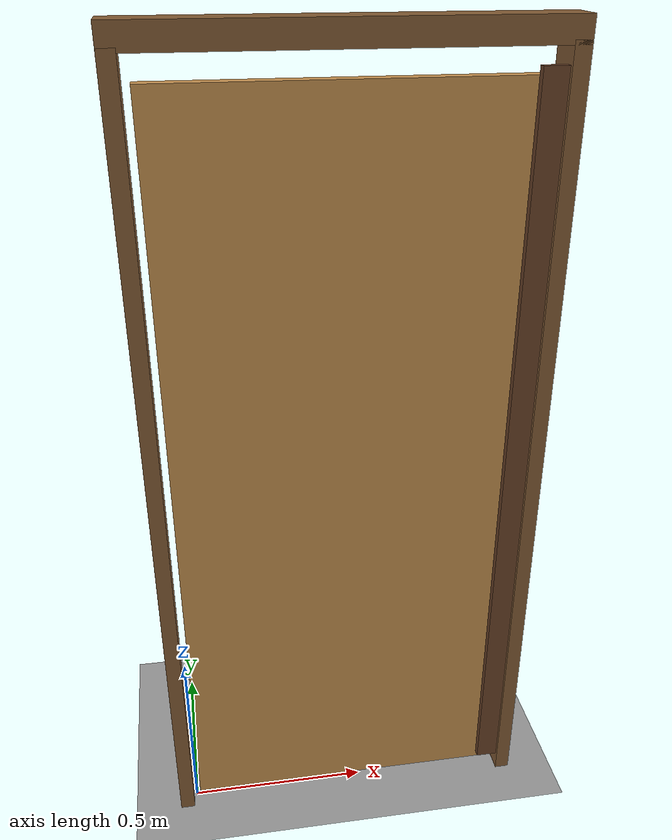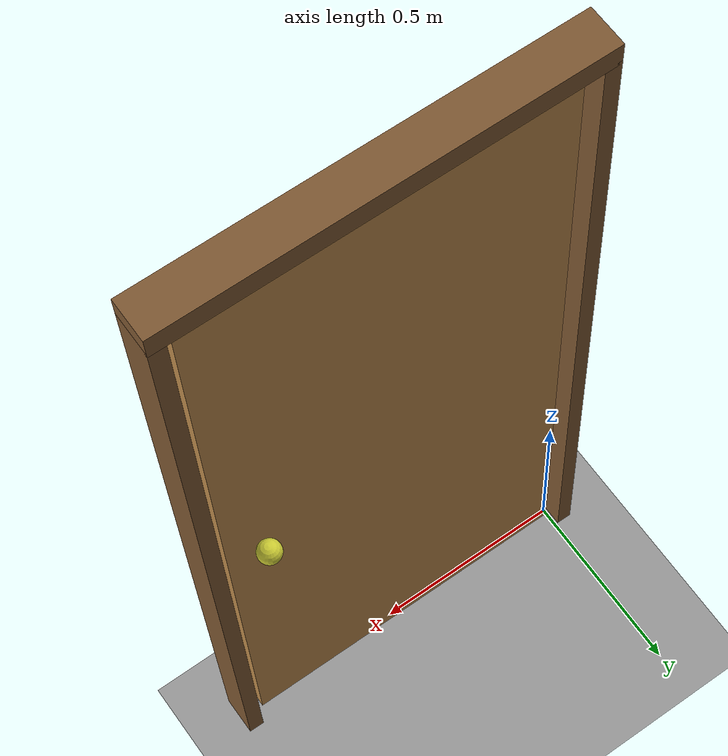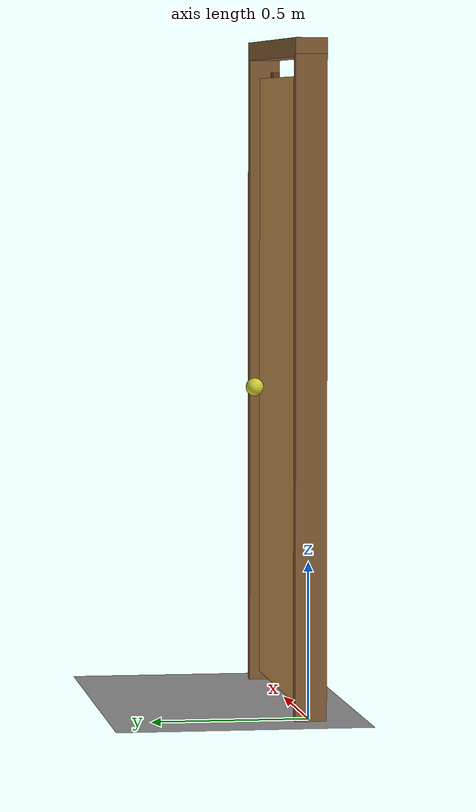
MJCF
<mujoco model="door_swings_shut">
  <option timestep="0.002"/>
  <worldbody>
    <light name="sun" pos="0 -2 4" dir="0 0.4 -1" diffuse="0.8 0.8 0.8"/>
    <geom name="floor" type="plane" pos="0 0 0" size="5 5 0.1" rgba="0.6 0.6 0.6 1"/>
    <geom name="jamb_hinge" type="box" pos="-0.03 0 1.05" size="0.02 0.05 1.05" rgba="0.5 0.35 0.2 1" contype="0" conaffinity="0"/>
    <geom name="jamb_latch" type="box" pos="0.95 0 1.05" size="0.02 0.05 1.05" rgba="0.5 0.35 0.2 1" contype="0" conaffinity="0"/>
    <geom name="header" type="box" pos="0.46 0 2.12" size="0.51 0.05 0.03" rgba="0.5 0.35 0.2 1" contype="0" conaffinity="0"/>
    <geom name="door_stop" type="box" pos="0.9 -0.03 1.05" size="0.03 0.01 1.0" rgba="0.4 0.25 0.15 1" contype="0" conaffinity="0"/>
    <body name="door" pos="0 0 0">
      <joint name="hinge" type="hinge" axis="0 0 1" pos="0 0 0" limited="true" range="0 1.6" stiffness="20" springref="-0.1" damping="12"/>
      <geom name="door_panel" type="box" pos="0.46 0 1.03" size="0.45 0.02 1.0" mass="20" rgba="0.75 0.55 0.3 1" contype="0" conaffinity="0"/>
      <geom name="handle" type="sphere" pos="0.82 0.05 1.0" size="0.03" mass="0.2" rgba="0.8 0.8 0.2 1" contype="0" conaffinity="0"/>
    </body>
  </worldbody>
  <keyframe>
    <key name="start" qpos="1.3" qvel="0"/>
  </keyframe>
</mujoco>
